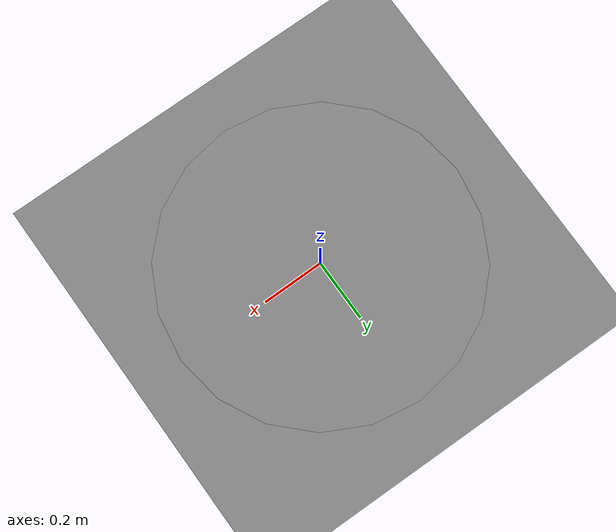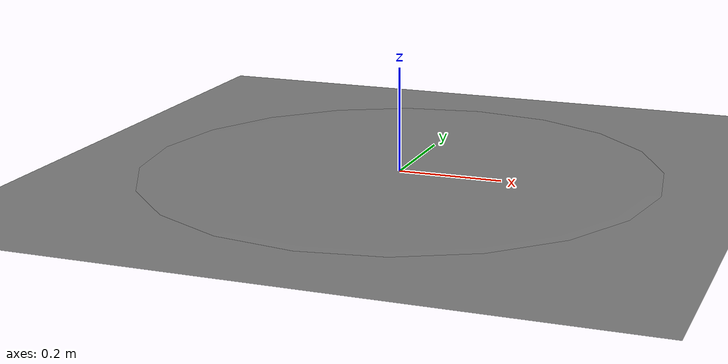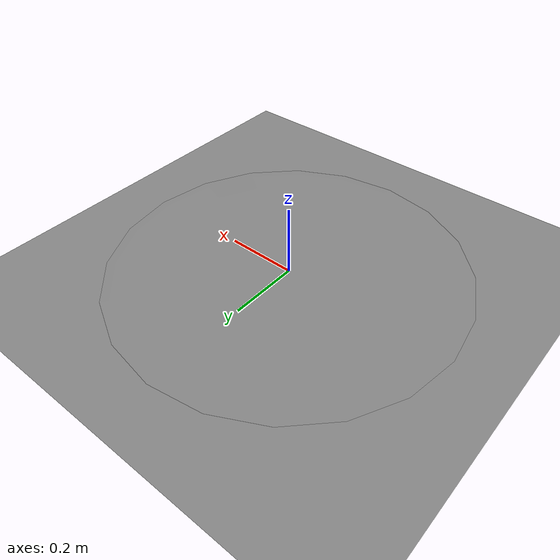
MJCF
<mujoco model="ell_disk">
            <option gravity="0 0 0" timestep="0.001"/>
            <worldbody>
                <geom name="floor" type="plane" size="10 10 0.1"/>
                <body name="ell" pos="0 0 0.0005">
                    <joint type="free"/>
                    <geom type="ellipsoid" size="0.5 0.5 0.001"/>
                </body>
            </worldbody>
        </mujoco>
